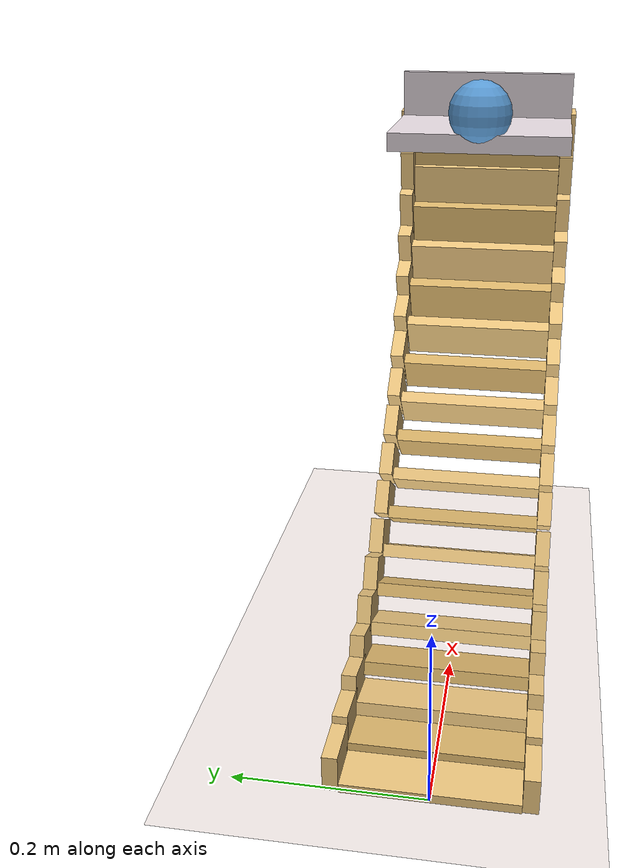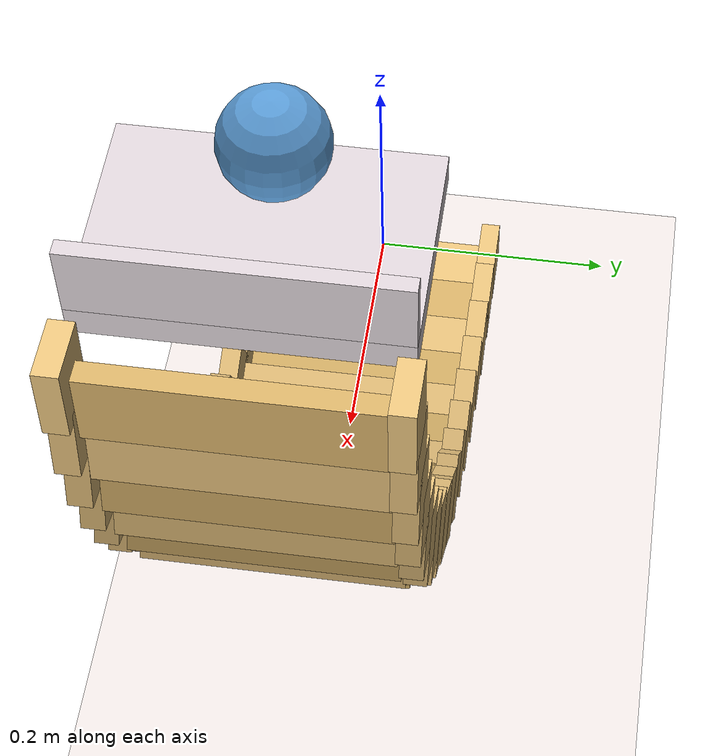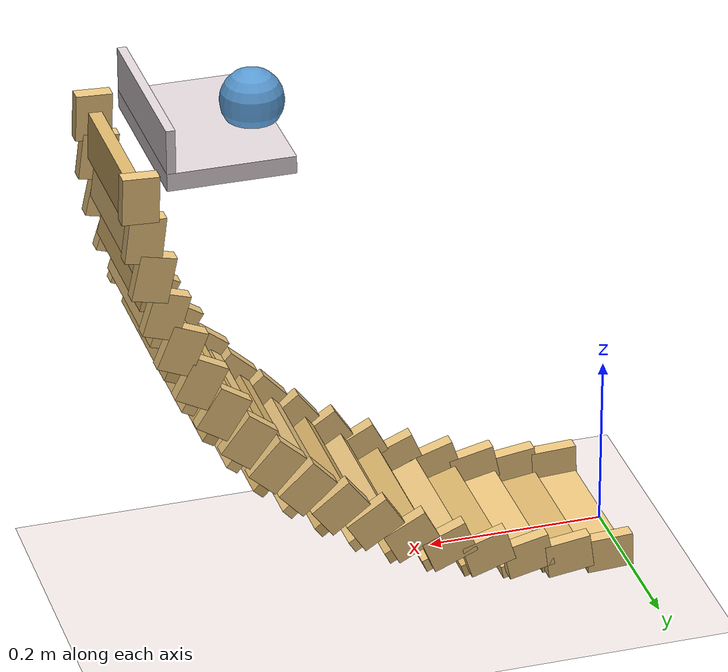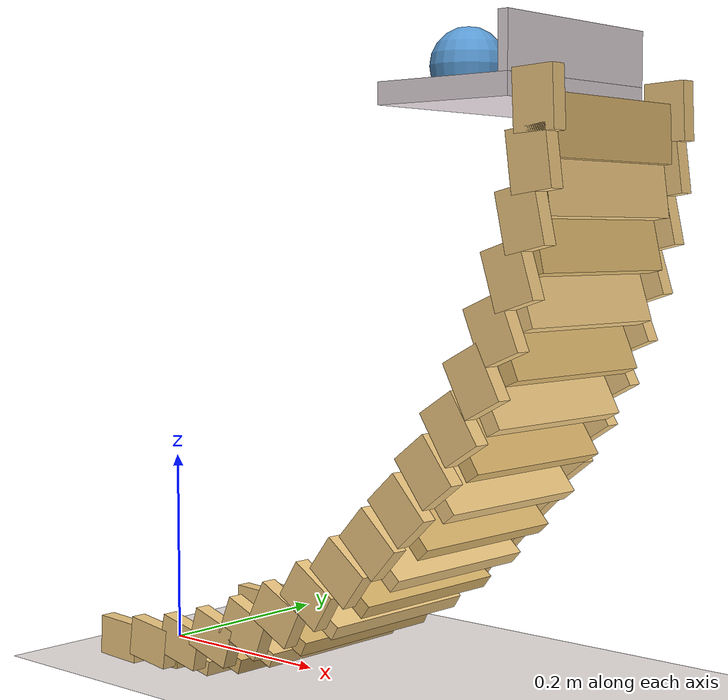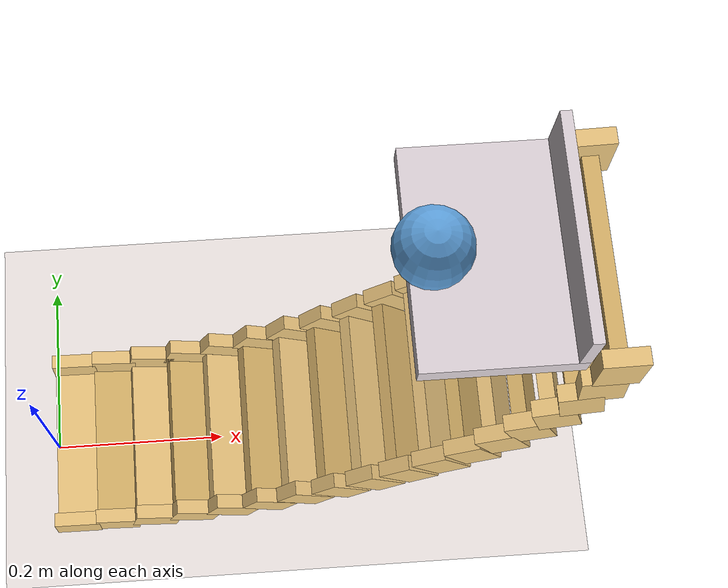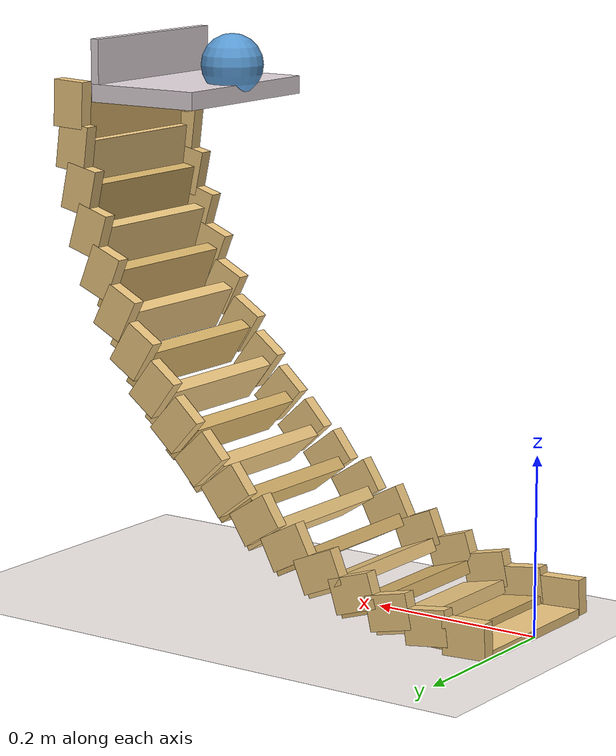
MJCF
<mujoco model="marble_ramp">
  <compiler angle="radian" coordinate="local" autolimits="true"/>
  <option timestep="0.001" gravity="0 0 -9.81" integrator="implicitfast"
          impratio="3" cone="elliptic"/>

  <visual>
    <headlight diffuse="0 0 0" ambient="0.50 0.48 0.55" specular="0 0 0"/>
    <rgba haze="0.94 0.91 0.90 1"/>
    <global azimuth="120" elevation="-15" offwidth="1920" offheight="1080" fovy="35"/>
    <quality shadowsize="8192" offsamples="8"/>
    <map shadowclip="6" shadowscale="0.7"/>
  </visual>

  <asset>
    <texture type="skybox" builtin="flat"
             rgb1="0.74 0.68 0.86" rgb2="0.74 0.68 0.86"
             width="512" height="512" mark="none" markrgb="0 0 0"/>
    <material name="floor_mat" rgba="0.94 0.91 0.90 1" specular="0" shininess="0"/>
    <material name="ramp_wood" rgba="0.93 0.78 0.50 1" specular="0.15" shininess="0.15"/>
    <material name="ramp_wood_dark" rgba="0.86 0.71 0.42 1" specular="0.15" shininess="0.15"/>
    <material name="platform_wood" rgba="0.88 0.84 0.86 1" specular="0.1" shininess="0.1"/>
    <material name="marble_blue" rgba="0.36 0.62 0.85 1" specular="0.5" shininess="0.6"/>
  </asset>

  <default>
    <geom friction="0.4 0.02 0.0005" solref="0.002 1" solimp="0.95 0.99 0.001"/>
  </default>

  <worldbody>
    <light pos="0 0 12" dir="-0.30 0.55 -1" directional="true" castshadow="true"
           diffuse="0.85 0.82 0.78" specular="0.15 0.15 0.15"/>
    <light pos="0 0 8" dir="0.40 -0.30 -1" directional="true" castshadow="false"
           diffuse="0.28 0.28 0.34" specular="0 0 0"/>

    <geom name="floor" type="plane" size="40 40 0.1" material="floor_mat"/>

    <!-- Top platform (white-ish block) where the marble starts -->
    <geom type="box" pos="0.450 0 0.560"
          size="0.070 0.100 0.010"
          material="platform_wood"/>
    <!-- A small "wall" so marble doesn't roll backward off the platform -->
    <geom type="box" pos="0.515 0 0.595"
          size="0.005 0.100 0.025" material="platform_wood"/>

    <!-- Curved ramp (made of 18 short segments) -->
    <geom type="box" pos="0.0240 0 0.0005" euler="0 0.0436 0"
          size="0.0264 0.0900 0.0075"
          material="ramp_wood"/>
    <geom type="box" pos="0.0718 0 0.0047" euler="0 0.1309 0"
          size="0.0264 0.0900 0.0075"
          material="ramp_wood_dark"/>
    <geom type="box" pos="0.1190 0 0.0130" euler="0 0.2182 0"
          size="0.0264 0.0900 0.0075"
          material="ramp_wood"/>
    <geom type="box" pos="0.1654 0 0.0255" euler="0 0.3054 0"
          size="0.0264 0.0900 0.0075"
          material="ramp_wood_dark"/>
    <geom type="box" pos="0.2105 0 0.0419" euler="0 0.3927 0"
          size="0.0264 0.0900 0.0075"
          material="ramp_wood"/>
    <geom type="box" pos="0.2540 0 0.0621" euler="0 0.4800 0"
          size="0.0264 0.0900 0.0075"
          material="ramp_wood_dark"/>
    <geom type="box" pos="0.2955 0 0.0861" euler="0 0.5672 0"
          size="0.0264 0.0900 0.0075"
          material="ramp_wood"/>
    <geom type="box" pos="0.3348 0 0.1137" euler="0 0.6545 0"
          size="0.0264 0.0900 0.0075"
          material="ramp_wood_dark"/>
    <geom type="box" pos="0.3716 0 0.1445" euler="0 0.7418 0"
          size="0.0264 0.0900 0.0075"
          material="ramp_wood"/>
    <geom type="box" pos="0.4055 0 0.1784" euler="0 0.8290 0"
          size="0.0264 0.0900 0.0075"
          material="ramp_wood_dark"/>
    <geom type="box" pos="0.4363 0 0.2152" euler="0 0.9163 0"
          size="0.0264 0.0900 0.0075"
          material="ramp_wood"/>
    <geom type="box" pos="0.4639 0 0.2545" euler="0 1.0036 0"
          size="0.0264 0.0900 0.0075"
          material="ramp_wood_dark"/>
    <geom type="box" pos="0.4879 0 0.2960" euler="0 1.0908 0"
          size="0.0264 0.0900 0.0075"
          material="ramp_wood"/>
    <geom type="box" pos="0.5081 0 0.3395" euler="0 1.1781 0"
          size="0.0264 0.0900 0.0075"
          material="ramp_wood_dark"/>
    <geom type="box" pos="0.5245 0 0.3846" euler="0 1.2654 0"
          size="0.0264 0.0900 0.0075"
          material="ramp_wood"/>
    <geom type="box" pos="0.5370 0 0.4310" euler="0 1.3526 0"
          size="0.0264 0.0900 0.0075"
          material="ramp_wood_dark"/>
    <geom type="box" pos="0.5453 0 0.4782" euler="0 1.4399 0"
          size="0.0264 0.0900 0.0075"
          material="ramp_wood"/>
    <geom type="box" pos="0.5495 0 0.5260" euler="0 1.5272 0"
          size="0.0264 0.0900 0.0075"
          material="ramp_wood_dark"/>

    <!-- Side walls so marble stays in the channel -->
    <geom type="box" pos="0.0240 -0.0980 0.0205" euler="0 0.0436 0"
          size="0.0264 0.008 0.0200"
          material="ramp_wood"/>
    <geom type="box" pos="0.0718 -0.0980 0.0247" euler="0 0.1309 0"
          size="0.0264 0.008 0.0200"
          material="ramp_wood"/>
    <geom type="box" pos="0.1190 -0.0980 0.0330" euler="0 0.2182 0"
          size="0.0264 0.008 0.0200"
          material="ramp_wood"/>
    <geom type="box" pos="0.1654 -0.0980 0.0455" euler="0 0.3054 0"
          size="0.0264 0.008 0.0200"
          material="ramp_wood"/>
    <geom type="box" pos="0.2105 -0.0980 0.0619" euler="0 0.3927 0"
          size="0.0264 0.008 0.0200"
          material="ramp_wood"/>
    <geom type="box" pos="0.2540 -0.0980 0.0821" euler="0 0.4800 0"
          size="0.0264 0.008 0.0200"
          material="ramp_wood"/>
    <geom type="box" pos="0.2955 -0.0980 0.1061" euler="0 0.5672 0"
          size="0.0264 0.008 0.0200"
          material="ramp_wood"/>
    <geom type="box" pos="0.3348 -0.0980 0.1337" euler="0 0.6545 0"
          size="0.0264 0.008 0.0200"
          material="ramp_wood"/>
    <geom type="box" pos="0.3716 -0.0980 0.1645" euler="0 0.7418 0"
          size="0.0264 0.008 0.0200"
          material="ramp_wood"/>
    <geom type="box" pos="0.4055 -0.0980 0.1984" euler="0 0.8290 0"
          size="0.0264 0.008 0.0200"
          material="ramp_wood"/>
    <geom type="box" pos="0.4363 -0.0980 0.2352" euler="0 0.9163 0"
          size="0.0264 0.008 0.0200"
          material="ramp_wood"/>
    <geom type="box" pos="0.4639 -0.0980 0.2745" euler="0 1.0036 0"
          size="0.0264 0.008 0.0200"
          material="ramp_wood"/>
    <geom type="box" pos="0.4879 -0.0980 0.3160" euler="0 1.0908 0"
          size="0.0264 0.008 0.0200"
          material="ramp_wood"/>
    <geom type="box" pos="0.5081 -0.0980 0.3595" euler="0 1.1781 0"
          size="0.0264 0.008 0.0200"
          material="ramp_wood"/>
    <geom type="box" pos="0.5245 -0.0980 0.4046" euler="0 1.2654 0"
          size="0.0264 0.008 0.0200"
          material="ramp_wood"/>
    <geom type="box" pos="0.5370 -0.0980 0.4510" euler="0 1.3526 0"
          size="0.0264 0.008 0.0200"
          material="ramp_wood"/>
    <geom type="box" pos="0.5453 -0.0980 0.4982" euler="0 1.4399 0"
          size="0.0264 0.008 0.0200"
          material="ramp_wood"/>
    <geom type="box" pos="0.5495 -0.0980 0.5460" euler="0 1.5272 0"
          size="0.0264 0.008 0.0200"
          material="ramp_wood"/>
    <geom type="box" pos="0.0240 0.0980 0.0205" euler="0 0.0436 0"
          size="0.0264 0.008 0.0200"
          material="ramp_wood"/>
    <geom type="box" pos="0.0718 0.0980 0.0247" euler="0 0.1309 0"
          size="0.0264 0.008 0.0200"
          material="ramp_wood"/>
    <geom type="box" pos="0.1190 0.0980 0.0330" euler="0 0.2182 0"
          size="0.0264 0.008 0.0200"
          material="ramp_wood"/>
    <geom type="box" pos="0.1654 0.0980 0.0455" euler="0 0.3054 0"
          size="0.0264 0.008 0.0200"
          material="ramp_wood"/>
    <geom type="box" pos="0.2105 0.0980 0.0619" euler="0 0.3927 0"
          size="0.0264 0.008 0.0200"
          material="ramp_wood"/>
    <geom type="box" pos="0.2540 0.0980 0.0821" euler="0 0.4800 0"
          size="0.0264 0.008 0.0200"
          material="ramp_wood"/>
    <geom type="box" pos="0.2955 0.0980 0.1061" euler="0 0.5672 0"
          size="0.0264 0.008 0.0200"
          material="ramp_wood"/>
    <geom type="box" pos="0.3348 0.0980 0.1337" euler="0 0.6545 0"
          size="0.0264 0.008 0.0200"
          material="ramp_wood"/>
    <geom type="box" pos="0.3716 0.0980 0.1645" euler="0 0.7418 0"
          size="0.0264 0.008 0.0200"
          material="ramp_wood"/>
    <geom type="box" pos="0.4055 0.0980 0.1984" euler="0 0.8290 0"
          size="0.0264 0.008 0.0200"
          material="ramp_wood"/>
    <geom type="box" pos="0.4363 0.0980 0.2352" euler="0 0.9163 0"
          size="0.0264 0.008 0.0200"
          material="ramp_wood"/>
    <geom type="box" pos="0.4639 0.0980 0.2745" euler="0 1.0036 0"
          size="0.0264 0.008 0.0200"
          material="ramp_wood"/>
    <geom type="box" pos="0.4879 0.0980 0.3160" euler="0 1.0908 0"
          size="0.0264 0.008 0.0200"
          material="ramp_wood"/>
    <geom type="box" pos="0.5081 0.0980 0.3595" euler="0 1.1781 0"
          size="0.0264 0.008 0.0200"
          material="ramp_wood"/>
    <geom type="box" pos="0.5245 0.0980 0.4046" euler="0 1.2654 0"
          size="0.0264 0.008 0.0200"
          material="ramp_wood"/>
    <geom type="box" pos="0.5370 0.0980 0.4510" euler="0 1.3526 0"
          size="0.0264 0.008 0.0200"
          material="ramp_wood"/>
    <geom type="box" pos="0.5453 0.0980 0.4982" euler="0 1.4399 0"
          size="0.0264 0.008 0.0200"
          material="ramp_wood"/>
    <geom type="box" pos="0.5495 0.0980 0.5460" euler="0 1.5272 0"
          size="0.0264 0.008 0.0200"
          material="ramp_wood"/>

    <!-- Marble: blue sphere, sits on the platform, rolls down when released -->
    <body name="marble" pos="0.400 0 0.590">
      <joint type="free"/>
      <geom type="sphere" size="0.035" mass="0.05" material="marble_blue"/>
    </body>

    <!-- Camera: front-left 3/4 view, framing the whole ramp -->
    <camera name="cam" pos="-1.7 -1.4 0.85" fovy="36"
            xyaxes="0.63 -0.77 0   0.18 0.15 0.97"/>
  </worldbody>
</mujoco>
